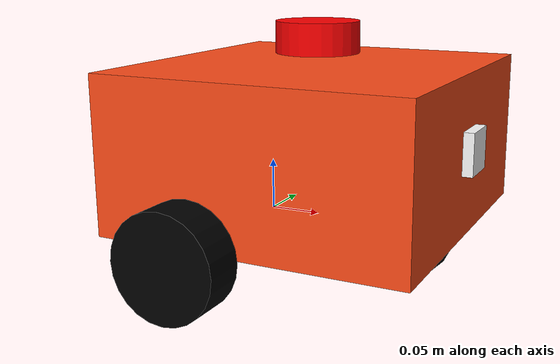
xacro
<?xml version="1.0"?>
<robot xmlns:xacro="http://www.ros.org/wiki/xacro"  name="robot">

    <xacro:arg name="use_ros2_control" default="true"/>

    <xacro:include filename="core.xacro"/>

    <xacro:if value="$(arg use_ros2_control)">
        <xacro:include filename="ros2_control.xacro"/>
    </xacro:if>
    <xacro:unless value="$(arg use_ros2_control)">
        <xacro:include filename="gz_controls.xacro"/>
    </xacro:unless>

    <xacro:include filename="lidar.xacro"/>
    <xacro:include filename="camera.xacro"/>

</robot>

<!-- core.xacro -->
<robot xmlns:xacro="http://www.ros.org/wiki/xacro">

    <!-- the inertial box will be initialized on the visual box -->
    <xacro:include filename="inertial_macros.xacro"/>

    <material name="white">
        <color rgba="1 1 1 1"/>
    </material>

    <material name="orange">
        <color rgba="1 0.3 0.1 1"/>
    </material>

    <material name="blue">
        <color rgba="0.2 0.2 1 1"/>
    </material>

    <material name="black">
        <color rgba="0 0 0 1"/>
    </material>

    <material name="red">
        <color rgba="1 0 0 1"/>
    </material>

    <!-- sits on the center of the 2 wheels as that is the center of rotation -->
    <link name="base_link">

    </link>

    <!-- Base footprint -->
     <joint name="base_footprint_link" type="fixed">
        <parent link="base_link"/>
        <child link="base_footprint"/>
        <origin xyz="0 0 0" rpy="0 0 0"/>
     </joint>

     <link name="base_footprint">

     </link>

    <!-- Chassis -->
    <!-- origin is in the back, behind the 2 wheels (hence -0.1 in the x axis) -->
    <joint name="chassis_joint" type="fixed">
        <parent link="base_link"/>
        <child link="chassis"/>
        <origin xyz="-0.1 0 0"/>
    </joint>

    <link name="chassis">
        <visual>
            <!-- since the box will be initialized at the center of the joint, we need to move it (a bit left and a bit up) -->
            <origin xyz="0.15 0 0.075"/>
            <geometry>
                <box size="0.3 0.3 0.15"/>
            </geometry>

            <material name="orange"/>
        </visual>

        <collision>
            <origin xyz="0.15 0 0.075"/>
            <geometry>
                <box size="0.3 0.3 0.15"/>
            </geometry>
        </collision>

        <xacro:inertial_box mass="0.5" x="0.3" y="0.3" z="0.15">
            <origin xyz="0.15 0 0.075" rpy="0 0 0"/>
        </xacro:inertial_box>
    </link>

    <gazebo reference="chassis">
        <material>Gazebo/Orange</material>
    </gazebo>

    <!-- Left wheel -->
    <joint name="left_wheel_joint" type="continuous">
        <parent link="base_link"/>
        <child link="left_wheel"/>

        <!-- turn the cylinder to the side by -90 deg -->
        <origin xyz="0 0.175 0" rpy="-${pi/2} 0 0"/>

        <!-- make it rotate on the positive z axis (meaning increasing the joint state will move the cylinder counter clockwise on the positive z axis) -->
        <axis xyz="0 0 1"/>
    </joint>

    <link name="left_wheel">
        <visual>
            <geometry>
                <cylinder radius="0.05" length="0.04"/>
            </geometry>

            <material name="black"/>
        </visual>

        <collision>
            <geometry>
                <cylinder radius="0.05" length="0.04"/>
            </geometry>
        </collision>

        <xacro:inertial_cylinder mass="0.1" length="0.04" radius="0.05">
            <origin xyz="0 0 0" rpy="0 0 0"/>
        </xacro:inertial_cylinder>
    </link>

    <gazebo reference="left_wheel">
        <material>Gazebo/Black</material>
    </gazebo>

    <!-- Right wheel -->
    <joint name="right_wheel_joint" type="continuous">
        <parent link="base_link"/>
        <child link="right_wheel"/>

        <!-- turn the cylinder to the side by 90 deg -->
        <origin xyz="0 -0.175 0" rpy="${pi/2} 0 0"/>

        <!-- make it rotate on the negative z axis (meaning increasing the joint state will move the cylinder counter clockwise on the negative z axis) -->
        <axis xyz="0 0 -1"/>
    </joint>

    <link name="right_wheel">
        <visual>
            <geometry>
                <cylinder radius="0.05" length="0.04"/>
            </geometry>

            <material name="black"/>
        </visual>

        <collision>
            <geometry>
                <cylinder radius="0.05" length="0.04"/>
            </geometry>
        </collision>

        <xacro:inertial_cylinder mass="0.1" length="0.04" radius="0.05">
            <origin xyz="0 0 0" rpy="0 0 0"/>
        </xacro:inertial_cylinder>
    </link>

    <gazebo reference="right_wheel">
        <material>Gazebo/Black</material>
    </gazebo>

    <!-- Caster wheel -->
    <joint name="caster_wheel_joint" type="fixed">
        <parent link="chassis"/>
        <child link="caster_wheel"/>
        <origin xyz="0.24 0 0"/>
    </joint>

    <link name="caster_wheel">
        <visual>
            <geometry>
                <sphere radius="0.05"/>
            </geometry>

            <material name="black"/>
        </visual>

        <collision>
            <geometry>
                <sphere radius="0.05"/>
            </geometry>
        </collision>

        <xacro:inertial_sphere mass="0.1" radius="0.05">
            <origin xyz="0 0 0" rpy="0 0 0"/>
        </xacro:inertial_sphere>
    </link>

    <gazebo reference="caster_wheel">
        <!-- friction coefficience (near 0, almost frictionless) -->
        <mu1 value="0.001"/>
        <mu2 value="0.001"/>

        <material>Gazebo/Black</material>
    </gazebo>

</robot>

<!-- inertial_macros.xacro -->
<robot xmlns:xacro="http://www.ros.org/wiki/xacro">

    <!-- specify some standard inertial calculations https://en.wikipedia.org/wiki/List_of_moments_of_inertia -->
    <!-- these make use of xacro's mathematical functionality -->

    <xacro:macro name="inertial_sphere" params="mass radius *origin">
        <inertial>
            <xacro:insert_block name="origin"/>
            <mass value="${mass}"/>
            <inertia ixx="${(2/5) * mass * (radius*radius)}" ixy="0.0" ixz="0.0"
                    iyy="${(2/5) * mass * (radius*radius)}" iyz="0.0"
                    izz="${(2/5) * mass * (radius*radius)}"/>
        </inertial>
    </xacro:macro>

    <xacro:macro name="inertial_box" params="mass x y z *origin">
        <inertial>
            <xacro:insert_block name="origin"/>
            <mass value="${mass}"/>
            <inertia ixx="${(1/12) * mass * (y*y+z*z)}" ixy="0.0" ixz="0.0"
                    iyy="${(1/12) * mass * (x*x+z*z)}" iyz="0.0"
                    izz="${(1/12) * mass * (x*x+y*y)}"/>
        </inertial>
    </xacro:macro>

    <xacro:macro name="inertial_cylinder" params="mass length radius *origin">
        <inertial>
            <xacro:insert_block name="origin"/>
            <mass value="${mass}"/>
            <inertia ixx="${(1/12) * mass * (3*radius*radius + length*length)}" ixy="0.0" ixz="0.0"
                    iyy="${(1/12) * mass * (3*radius*radius + length*length)}" iyz="0.0"
                    izz="${(1/2) * mass * (radius*radius)}"/>
        </inertial>
    </xacro:macro>

</robot>

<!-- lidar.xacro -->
<robot xmlns:xacro="http://www.ros.org/wiki/xacro">

    <joint name="lidar_joint" type="fixed">
        <parent link="chassis"/>
        <child link="lidar_frame"/>

        <!-- move lidar up and forward a little bit with respect to the chassis origin link -->
        <origin xyz="0.15 0 0.175" rpy="0 0 0"/>
    </joint>

    <link name="lidar_frame">
        <visual>
            <geometry>
                <cylinder radius="0.04" length="0.03"/>
            </geometry>

            <material name="red"/>
        </visual>

        <collision>
            <geometry>
                <cylinder radius="0.04" length="0.03"/>
            </geometry>
        </collision>

        <xacro:inertial_cylinder mass="0.1" length="0.03" radius="0.04">
            <origin xyz="0 0 0" rpy="0 0 0"/>
        </xacro:inertial_cylinder>
    </link>

    <!-- simulate lidar in gazebo -->
    <gazebo reference="lidar_frame">
        <material>Gazebo/Red</material>

        <sensor name="lidar" type="ray">
            <pose>0 0 0 0 0 0</pose> <!-- origin of virtual sensor relative to link -->
            <visualize>false</visualize>
            <update_rate>20</update_rate>
            <ray>
                <!-- horizontal scan parameters -->
                <scan>
                    <horizontal>
                        <samples>360</samples>
                        <resolution>1</resolution>
                        <min_angle>-3.14</min_angle>
                        <max_angle>3.14</max_angle>
                    </horizontal>
                </scan>

                <range>
                    <min>0.3</min>
                    <max>12</max>
                    <resolution>0.01</resolution>
                </range>
            </ray>

            <!-- publish laser scan message to the "scan" topic -->
            <plugin name="lidar_controller" filename="libgazebo_ros_ray_sensor.so">
                <ros>
                    <argument>~/out:=scan</argument>
                </ros>
                <output_type>sensor_msgs/LaserScan</output_type>
                <frame_name>lidar_frame</frame_name>
            </plugin>
        </sensor>
    </gazebo>

</robot>

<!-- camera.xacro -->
<robot xmlns:xacro="http://www.ros.org/wiki/xacro">

    <joint name="camera_joint" type="fixed">
        <parent link="chassis"/>
        <child link="camera_link"/>

        <!-- move camera up and forward a little bit with respect to the chassis origin link -->
        <origin xyz="0.305 0 0.08" rpy="0 0 0"/>
    </joint>

    <link name="camera_link">
        <visual>
            <geometry>
                <box size="0.01 0.04 0.04"/>
            </geometry>

            <material name="white"/>
        </visual>
    </link>

    <!-- gives us an alternative way of looking with camera (image standard) -->
    <joint name="camera_optical_joint" type="fixed">
        <parent link="camera_link"/>
        <child link="camera_link_optical"/>

        <!-- move camera up and forward a little bit with respect to the chassis origin link -->
        <origin xyz="0 0 0" rpy="${-pi/2} 0 ${-pi/2}"/>
    </joint>

    <!-- invisible joint -->
    <link name="camera_link_optical"></link>

    <!-- simulate camera in gazebo -->
    <gazebo reference="camera_link">
        <material>Gazebo/White</material>

        <sensor name="camera" type="camera">
            <pose>0 0 0 0 0 0</pose> <!-- origin of virtual sensor relative to link -->
            <visualize>true</visualize>
            <update_rate>10</update_rate>
            <camera>
                <horizontal_fov>1.089</horizontal_fov> <!-- how zoomed in the camera is (radian) -->

                <image>
                    <format>R8G8B8</format>
                    <width>640</width>
                    <height>480</height>
                </image>

                <clip>
                    <near>0.05</near>
                    <far>8.0</far>
                </clip>
            </camera>

            <!-- publish camera scan message to the "scan" topic -->
            <plugin name="camera_controller" filename="libgazebo_ros_camera.so">
                <frame_name>camera_link_optical</frame_name> <!-- published data link is the optical one, not the camera link one -->
            </plugin>
        </sensor>
    </gazebo>

</robot>
